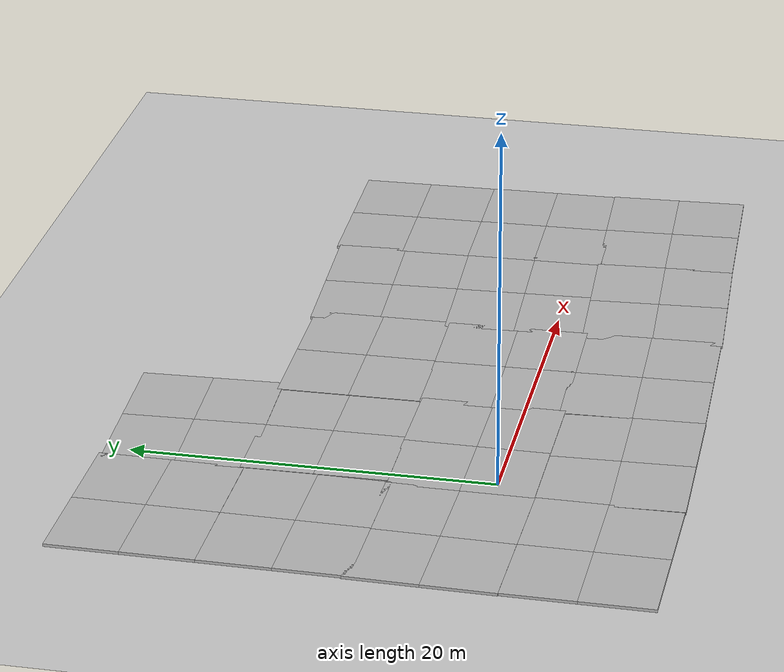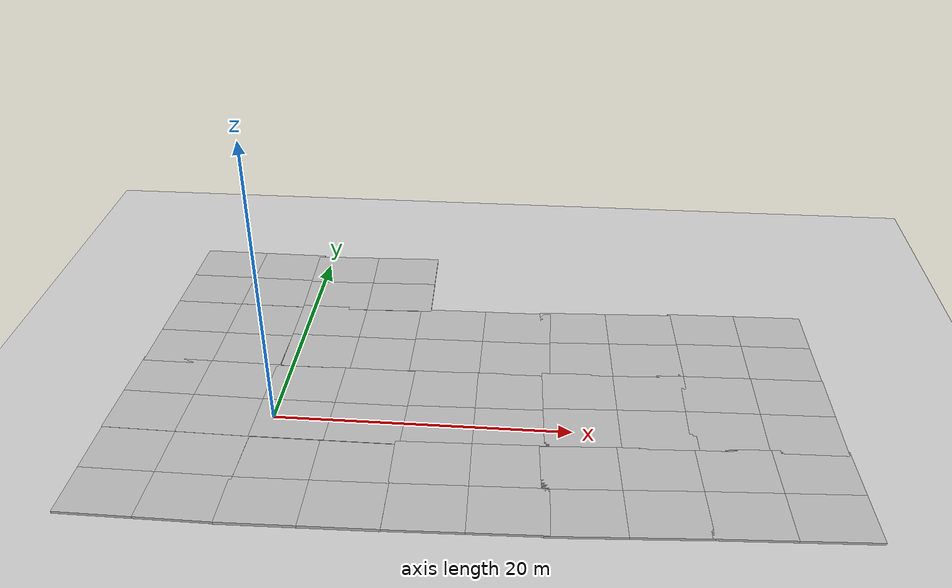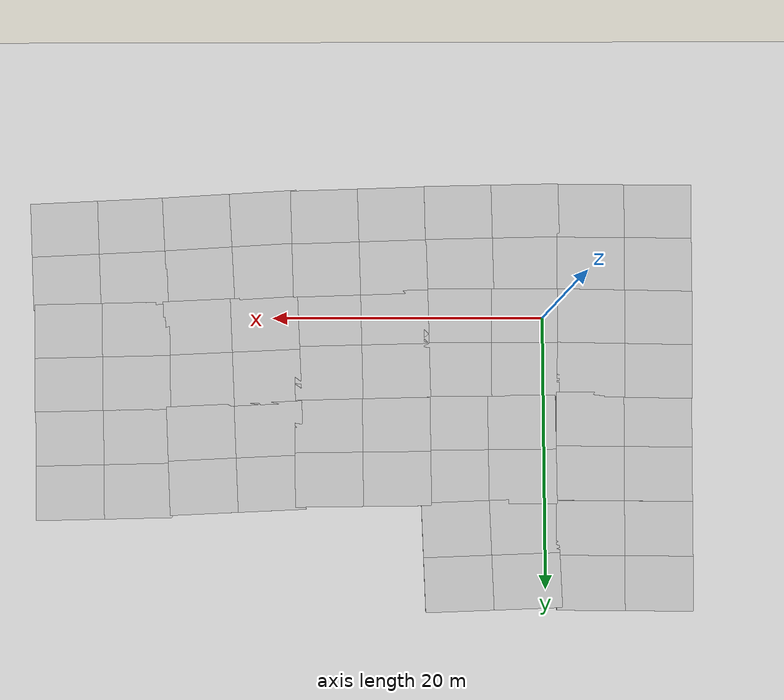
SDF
<sdf version="1.7">
 <world name="default">
  <model name="ground_plane">
   <static>1</static>
   <link name="link">
    <collision name="collision">
     <geometry><plane><normal>0 0 1</normal><size>100 100</size></plane></geometry>
     <surface><friction><ode><mu>100</mu><mu2>50</mu2></ode></friction></surface>
    </collision>
    <visual name="visual">
     <cast_shadows>0</cast_shadows>
     <geometry><plane><normal>0 0 1</normal><size>100 100</size></plane></geometry>
     <material>
      <script><uri>file://media/materials/scripts/gazebo.material</uri><name>Gazebo/Grey</name></script>
     </material>
    </visual>
   </link>
  </model>
  <model name="desert2_sample">
   <static>1</static>
   <link name="link">
    <collision name="collision"><geometry><box><size>8 10 0.2</size></box></geometry></collision>
    <visual name="visual_1">
     <pose>-2 2.5 0 0 -0 0</pose>
     <cast_shadows>0</cast_shadows>
     <geometry><box><size>4 5 0.2</size></box></geometry>
     <material>
      <script>
       <uri>model://desert2/materials/scripts</uri>
       <uri>model://desert2/materials/textures</uri>
       <name>vrc/mud</name>
      </script>
     </material>
    </visual>
    <visual name="visual_2">
     <pose>2 2.5 0 0 -0 0</pose>
     <cast_shadows>0</cast_shadows>
     <geometry><box><size>4 5 0.2</size></box></geometry>
     <material>
      <script>
       <uri>model://desert2/materials/scripts</uri>
       <uri>model://desert2/materials/textures</uri>
       <name>vrc/mud</name>
      </script>
     </material>
    </visual>
    <visual name="visual_3">
     <pose>2 -2.5 0 0 -0 0</pose>
     <cast_shadows>0</cast_shadows>
     <geometry><box><size>4 5 0.2</size></box></geometry>
     <material>
      <script>
       <uri>model://desert2/materials/scripts</uri>
       <uri>model://desert2/materials/textures</uri>
       <name>vrc/mud</name>
      </script>
     </material>
    </visual>
    <visual name="visual_4">
     <pose>-2 -2.5 0 0 -0 0</pose>
     <cast_shadows>0</cast_shadows>
     <geometry><box><size>4 5 0.2</size></box></geometry>
     <material>
      <script>
       <uri>model://desert2/materials/scripts</uri>
       <uri>model://desert2/materials/textures</uri>
       <name>vrc/mud</name>
      </script>
     </material>
    </visual>
   </link>
   <pose>-6.15183 -6.02956 0 1.7e-05 -0.001706 -1.58072</pose>
  </model>
  <model name="desert2_sample_0">
   <static>1</static>
   <link name="link">
    <collision name="collision"><geometry><box><size>8 10 0.2</size></box></geometry></collision>
    <visual name="visual_1">
     <pose>-2 2.5 0 0 -0 0</pose>
     <cast_shadows>0</cast_shadows>
     <geometry><box><size>4 5 0.2</size></box></geometry>
     <material>
      <script>
       <uri>model://desert2/materials/scripts</uri>
       <uri>model://desert2/materials/textures</uri>
       <name>vrc/mud</name>
      </script>
     </material>
    </visual>
    <visual name="visual_2">
     <pose>2 2.5 0 0 -0 0</pose>
     <cast_shadows>0</cast_shadows>
     <geometry><box><size>4 5 0.2</size></box></geometry>
     <material>
      <script>
       <uri>model://desert2/materials/scripts</uri>
       <uri>model://desert2/materials/textures</uri>
       <name>vrc/mud</name>
      </script>
     </material>
    </visual>
    <visual name="visual_3">
     <pose>2 -2.5 0 0 -0 0</pose>
     <cast_shadows>0</cast_shadows>
     <geometry><box><size>4 5 0.2</size></box></geometry>
     <material>
      <script>
       <uri>model://desert2/materials/scripts</uri>
       <uri>model://desert2/materials/textures</uri>
       <name>vrc/mud</name>
      </script>
     </material>
    </visual>
    <visual name="visual_4">
     <pose>-2 -2.5 0 0 -0 0</pose>
     <cast_shadows>0</cast_shadows>
     <geometry><box><size>4 5 0.2</size></box></geometry>
     <material>
      <script>
       <uri>model://desert2/materials/scripts</uri>
       <uri>model://desert2/materials/textures</uri>
       <name>vrc/mud</name>
      </script>
     </material>
    </visual>
   </link>
   <pose>3.66587 -6.016 0 0.000287 -0.007988 -1.55225</pose>
  </model>
  <model name="desert2_sample_1">
   <static>1</static>
   <link name="link">
    <collision name="collision"><geometry><box><size>8 10 0.2</size></box></geometry></collision>
    <visual name="visual_1">
     <pose>-2 2.5 0 0 -0 0</pose>
     <cast_shadows>0</cast_shadows>
     <geometry><box><size>4 5 0.2</size></box></geometry>
     <material>
      <script>
       <uri>model://desert2/materials/scripts</uri>
       <uri>model://desert2/materials/textures</uri>
       <name>vrc/mud</name>
      </script>
     </material>
    </visual>
    <visual name="visual_2">
     <pose>2 2.5 0 0 -0 0</pose>
     <cast_shadows>0</cast_shadows>
     <geometry><box><size>4 5 0.2</size></box></geometry>
     <material>
      <script>
       <uri>model://desert2/materials/scripts</uri>
       <uri>model://desert2/materials/textures</uri>
       <name>vrc/mud</name>
      </script>
     </material>
    </visual>
    <visual name="visual_3">
     <pose>2 -2.5 0 0 -0 0</pose>
     <cast_shadows>0</cast_shadows>
     <geometry><box><size>4 5 0.2</size></box></geometry>
     <material>
      <script>
       <uri>model://desert2/materials/scripts</uri>
       <uri>model://desert2/materials/textures</uri>
       <name>vrc/mud</name>
      </script>
     </material>
    </visual>
    <visual name="visual_4">
     <pose>-2 -2.5 0 0 -0 0</pose>
     <cast_shadows>0</cast_shadows>
     <geometry><box><size>4 5 0.2</size></box></geometry>
     <material>
      <script>
       <uri>model://desert2/materials/scripts</uri>
       <uri>model://desert2/materials/textures</uri>
       <name>vrc/mud</name>
      </script>
     </material>
    </visual>
   </link>
   <pose>13.605 -5.74845 0 0 0 -1.54049</pose>
  </model>
  <model name="desert2_sample_2">
   <static>1</static>
   <link name="link">
    <collision name="collision"><geometry><box><size>8 10 0.2</size></box></geometry></collision>
    <visual name="visual_1">
     <pose>-2 2.5 0 0 -0 0</pose>
     <cast_shadows>0</cast_shadows>
     <geometry><box><size>4 5 0.2</size></box></geometry>
     <material>
      <script>
       <uri>model://desert2/materials/scripts</uri>
       <uri>model://desert2/materials/textures</uri>
       <name>vrc/mud</name>
      </script>
     </material>
    </visual>
    <visual name="visual_2">
     <pose>2 2.5 0 0 -0 0</pose>
     <cast_shadows>0</cast_shadows>
     <geometry><box><size>4 5 0.2</size></box></geometry>
     <material>
      <script>
       <uri>model://desert2/materials/scripts</uri>
       <uri>model://desert2/materials/textures</uri>
       <name>vrc/mud</name>
      </script>
     </material>
    </visual>
    <visual name="visual_3">
     <pose>2 -2.5 0 0 -0 0</pose>
     <cast_shadows>0</cast_shadows>
     <geometry><box><size>4 5 0.2</size></box></geometry>
     <material>
      <script>
       <uri>model://desert2/materials/scripts</uri>
       <uri>model://desert2/materials/textures</uri>
       <name>vrc/mud</name>
      </script>
     </material>
    </visual>
    <visual name="visual_4">
     <pose>-2 -2.5 0 0 -0 0</pose>
     <cast_shadows>0</cast_shadows>
     <geometry><box><size>4 5 0.2</size></box></geometry>
     <material>
      <script>
       <uri>model://desert2/materials/scripts</uri>
       <uri>model://desert2/materials/textures</uri>
       <name>vrc/mud</name>
      </script>
     </material>
    </visual>
   </link>
   <pose>-6.07201 1.90763 0 0 0 -1.59141</pose>
  </model>
  <model name="desert2_sample_3">
   <static>1</static>
   <link name="link">
    <collision name="collision"><geometry><box><size>8 10 0.2</size></box></geometry></collision>
    <visual name="visual_1">
     <pose>-2 2.5 0 0 -0 0</pose>
     <cast_shadows>0</cast_shadows>
     <geometry><box><size>4 5 0.2</size></box></geometry>
     <material>
      <script>
       <uri>model://desert2/materials/scripts</uri>
       <uri>model://desert2/materials/textures</uri>
       <name>vrc/mud</name>
      </script>
     </material>
    </visual>
    <visual name="visual_2">
     <pose>2 2.5 0 0 -0 0</pose>
     <cast_shadows>0</cast_shadows>
     <geometry><box><size>4 5 0.2</size></box></geometry>
     <material>
      <script>
       <uri>model://desert2/materials/scripts</uri>
       <uri>model://desert2/materials/textures</uri>
       <name>vrc/mud</name>
      </script>
     </material>
    </visual>
    <visual name="visual_3">
     <pose>2 -2.5 0 0 -0 0</pose>
     <cast_shadows>0</cast_shadows>
     <geometry><box><size>4 5 0.2</size></box></geometry>
     <material>
      <script>
       <uri>model://desert2/materials/scripts</uri>
       <uri>model://desert2/materials/textures</uri>
       <name>vrc/mud</name>
      </script>
     </material>
    </visual>
    <visual name="visual_4">
     <pose>-2 -2.5 0 0 -0 0</pose>
     <cast_shadows>0</cast_shadows>
     <geometry><box><size>4 5 0.2</size></box></geometry>
     <material>
      <script>
       <uri>model://desert2/materials/scripts</uri>
       <uri>model://desert2/materials/textures</uri>
       <name>vrc/mud</name>
      </script>
     </material>
    </visual>
   </link>
   <pose>3.80954 1.81427 0 0 0 -1.5745</pose>
  </model>
  <model name="desert2_sample_4">
   <static>1</static>
   <link name="link">
    <collision name="collision"><geometry><box><size>8 10 0.2</size></box></geometry></collision>
    <visual name="visual_1">
     <pose>-2 2.5 0 0 -0 0</pose>
     <cast_shadows>0</cast_shadows>
     <geometry><box><size>4 5 0.2</size></box></geometry>
     <material>
      <script>
       <uri>model://desert2/materials/scripts</uri>
       <uri>model://desert2/materials/textures</uri>
       <name>vrc/mud</name>
      </script>
     </material>
    </visual>
    <visual name="visual_2">
     <pose>2 2.5 0 0 -0 0</pose>
     <cast_shadows>0</cast_shadows>
     <geometry><box><size>4 5 0.2</size></box></geometry>
     <material>
      <script>
       <uri>model://desert2/materials/scripts</uri>
       <uri>model://desert2/materials/textures</uri>
       <name>vrc/mud</name>
      </script>
     </material>
    </visual>
    <visual name="visual_3">
     <pose>2 -2.5 0 0 -0 0</pose>
     <cast_shadows>0</cast_shadows>
     <geometry><box><size>4 5 0.2</size></box></geometry>
     <material>
      <script>
       <uri>model://desert2/materials/scripts</uri>
       <uri>model://desert2/materials/textures</uri>
       <name>vrc/mud</name>
      </script>
     </material>
    </visual>
    <visual name="visual_4">
     <pose>-2 -2.5 0 0 -0 0</pose>
     <cast_shadows>0</cast_shadows>
     <geometry><box><size>4 5 0.2</size></box></geometry>
     <material>
      <script>
       <uri>model://desert2/materials/scripts</uri>
       <uri>model://desert2/materials/textures</uri>
       <name>vrc/mud</name>
      </script>
     </material>
    </visual>
   </link>
   <pose>13.4132 1.97928 -0 0 0 -1.54908</pose>
  </model>
  <model name="desert2_sample_5">
   <static>1</static>
   <link name="link">
    <collision name="collision"><geometry><box><size>8 10 0.2</size></box></geometry></collision>
    <visual name="visual_1">
     <pose>-2 2.5 0 0 -0 0</pose>
     <cast_shadows>0</cast_shadows>
     <geometry><box><size>4 5 0.2</size></box></geometry>
     <material>
      <script>
       <uri>model://desert2/materials/scripts</uri>
       <uri>model://desert2/materials/textures</uri>
       <name>vrc/mud</name>
      </script>
     </material>
    </visual>
    <visual name="visual_2">
     <pose>2 2.5 0 0 -0 0</pose>
     <cast_shadows>0</cast_shadows>
     <geometry><box><size>4 5 0.2</size></box></geometry>
     <material>
      <script>
       <uri>model://desert2/materials/scripts</uri>
       <uri>model://desert2/materials/textures</uri>
       <name>vrc/mud</name>
      </script>
     </material>
    </visual>
    <visual name="visual_3">
     <pose>2 -2.5 0 0 -0 0</pose>
     <cast_shadows>0</cast_shadows>
     <geometry><box><size>4 5 0.2</size></box></geometry>
     <material>
      <script>
       <uri>model://desert2/materials/scripts</uri>
       <uri>model://desert2/materials/textures</uri>
       <name>vrc/mud</name>
      </script>
     </material>
    </visual>
    <visual name="visual_4">
     <pose>-2 -2.5 0 0 -0 0</pose>
     <cast_shadows>0</cast_shadows>
     <geometry><box><size>4 5 0.2</size></box></geometry>
     <material>
      <script>
       <uri>model://desert2/materials/scripts</uri>
       <uri>model://desert2/materials/textures</uri>
       <name>vrc/mud</name>
      </script>
     </material>
    </visual>
   </link>
   <pose>-5.89392 9.54352 0 0 0 -1.58202</pose>
  </model>
  <model name="desert2_sample_6">
   <static>1</static>
   <link name="link">
    <collision name="collision"><geometry><box><size>8 10 0.2</size></box></geometry></collision>
    <visual name="visual_1">
     <pose>-2 2.5 0 0 -0 0</pose>
     <cast_shadows>0</cast_shadows>
     <geometry><box><size>4 5 0.2</size></box></geometry>
     <material>
      <script>
       <uri>model://desert2/materials/scripts</uri>
       <uri>model://desert2/materials/textures</uri>
       <name>vrc/mud</name>
      </script>
     </material>
    </visual>
    <visual name="visual_2">
     <pose>2 2.5 0 0 -0 0</pose>
     <cast_shadows>0</cast_shadows>
     <geometry><box><size>4 5 0.2</size></box></geometry>
     <material>
      <script>
       <uri>model://desert2/materials/scripts</uri>
       <uri>model://desert2/materials/textures</uri>
       <name>vrc/mud</name>
      </script>
     </material>
    </visual>
    <visual name="visual_3">
     <pose>2 -2.5 0 0 -0 0</pose>
     <cast_shadows>0</cast_shadows>
     <geometry><box><size>4 5 0.2</size></box></geometry>
     <material>
      <script>
       <uri>model://desert2/materials/scripts</uri>
       <uri>model://desert2/materials/textures</uri>
       <name>vrc/mud</name>
      </script>
     </material>
    </visual>
    <visual name="visual_4">
     <pose>-2 -2.5 0 0 -0 0</pose>
     <cast_shadows>0</cast_shadows>
     <geometry><box><size>4 5 0.2</size></box></geometry>
     <material>
      <script>
       <uri>model://desert2/materials/scripts</uri>
       <uri>model://desert2/materials/textures</uri>
       <name>vrc/mud</name>
      </script>
     </material>
    </visual>
   </link>
   <pose>-5.80858 17.5469 0 0 0 -1.58064</pose>
  </model>
  <model name="desert2_sample_10">
   <static>1</static>
   <link name="link">
    <collision name="collision"><geometry><box><size>8 10 0.2</size></box></geometry></collision>
    <visual name="visual_1">
     <pose>-2 2.5 0 0 -0 0</pose>
     <cast_shadows>0</cast_shadows>
     <geometry><box><size>4 5 0.2</size></box></geometry>
     <material>
      <script>
       <uri>model://desert2/materials/scripts</uri>
       <uri>model://desert2/materials/textures</uri>
       <name>vrc/mud</name>
      </script>
     </material>
    </visual>
    <visual name="visual_2">
     <pose>2 2.5 0 0 -0 0</pose>
     <cast_shadows>0</cast_shadows>
     <geometry><box><size>4 5 0.2</size></box></geometry>
     <material>
      <script>
       <uri>model://desert2/materials/scripts</uri>
       <uri>model://desert2/materials/textures</uri>
       <name>vrc/mud</name>
      </script>
     </material>
    </visual>
    <visual name="visual_3">
     <pose>2 -2.5 0 0 -0 0</pose>
     <cast_shadows>0</cast_shadows>
     <geometry><box><size>4 5 0.2</size></box></geometry>
     <material>
      <script>
       <uri>model://desert2/materials/scripts</uri>
       <uri>model://desert2/materials/textures</uri>
       <name>vrc/mud</name>
      </script>
     </material>
    </visual>
    <visual name="visual_4">
     <pose>-2 -2.5 0 0 -0 0</pose>
     <cast_shadows>0</cast_shadows>
     <geometry><box><size>4 5 0.2</size></box></geometry>
     <material>
      <script>
       <uri>model://desert2/materials/scripts</uri>
       <uri>model://desert2/materials/textures</uri>
       <name>vrc/mud</name>
      </script>
     </material>
    </visual>
   </link>
   <pose>4.10776 9.76319 -0.007095 -0.005205 -9.9e-05 -1.56425</pose>
  </model>
  <model name="desert2_sample_11">
   <static>1</static>
   <link name="link">
    <collision name="collision"><geometry><box><size>8 10 0.2</size></box></geometry></collision>
    <visual name="visual_1">
     <pose>-2 2.5 0 0 -0 0</pose>
     <cast_shadows>0</cast_shadows>
     <geometry><box><size>4 5 0.2</size></box></geometry>
     <material>
      <script>
       <uri>model://desert2/materials/scripts</uri>
       <uri>model://desert2/materials/textures</uri>
       <name>vrc/mud</name>
      </script>
     </material>
    </visual>
    <visual name="visual_2">
     <pose>2 2.5 0 0 -0 0</pose>
     <cast_shadows>0</cast_shadows>
     <geometry><box><size>4 5 0.2</size></box></geometry>
     <material>
      <script>
       <uri>model://desert2/materials/scripts</uri>
       <uri>model://desert2/materials/textures</uri>
       <name>vrc/mud</name>
      </script>
     </material>
    </visual>
    <visual name="visual_3">
     <pose>2 -2.5 0 0 -0 0</pose>
     <cast_shadows>0</cast_shadows>
     <geometry><box><size>4 5 0.2</size></box></geometry>
     <material>
      <script>
       <uri>model://desert2/materials/scripts</uri>
       <uri>model://desert2/materials/textures</uri>
       <name>vrc/mud</name>
      </script>
     </material>
    </visual>
    <visual name="visual_4">
     <pose>-2 -2.5 0 0 -0 0</pose>
     <cast_shadows>0</cast_shadows>
     <geometry><box><size>4 5 0.2</size></box></geometry>
     <material>
      <script>
       <uri>model://desert2/materials/scripts</uri>
       <uri>model://desert2/materials/textures</uri>
       <name>vrc/mud</name>
      </script>
     </material>
    </visual>
   </link>
   <pose>3.93401 17.489 0 0 0 -1.53478</pose>
  </model>
  <model name="desert2_sample_15">
   <static>1</static>
   <link name="link">
    <collision name="collision"><geometry><box><size>8 10 0.2</size></box></geometry></collision>
    <visual name="visual_1">
     <pose>-2 2.5 0 0 -0 0</pose>
     <cast_shadows>0</cast_shadows>
     <geometry><box><size>4 5 0.2</size></box></geometry>
     <material>
      <script>
       <uri>model://desert2/materials/scripts</uri>
       <uri>model://desert2/materials/textures</uri>
       <name>vrc/mud</name>
      </script>
     </material>
    </visual>
    <visual name="visual_2">
     <pose>2 2.5 0 0 -0 0</pose>
     <cast_shadows>0</cast_shadows>
     <geometry><box><size>4 5 0.2</size></box></geometry>
     <material>
      <script>
       <uri>model://desert2/materials/scripts</uri>
       <uri>model://desert2/materials/textures</uri>
       <name>vrc/mud</name>
      </script>
     </material>
    </visual>
    <visual name="visual_3">
     <pose>2 -2.5 0 0 -0 0</pose>
     <cast_shadows>0</cast_shadows>
     <geometry><box><size>4 5 0.2</size></box></geometry>
     <material>
      <script>
       <uri>model://desert2/materials/scripts</uri>
       <uri>model://desert2/materials/textures</uri>
       <name>vrc/mud</name>
      </script>
     </material>
    </visual>
    <visual name="visual_4">
     <pose>-2 -2.5 0 0 -0 0</pose>
     <cast_shadows>0</cast_shadows>
     <geometry><box><size>4 5 0.2</size></box></geometry>
     <material>
      <script>
       <uri>model://desert2/materials/scripts</uri>
       <uri>model://desert2/materials/textures</uri>
       <name>vrc/mud</name>
      </script>
     </material>
    </visual>
   </link>
   <pose>13.3483 9.91985 0 0 0 -1.56194</pose>
  </model>
  <model name="desert2_sample_20">
   <static>1</static>
   <link name="link">
    <collision name="collision"><geometry><box><size>8 10 0.2</size></box></geometry></collision>
    <visual name="visual_1">
     <pose>-2 2.5 0 0 -0 0</pose>
     <cast_shadows>0</cast_shadows>
     <geometry><box><size>4 5 0.2</size></box></geometry>
     <material>
      <script>
       <uri>model://desert2/materials/scripts</uri>
       <uri>model://desert2/materials/textures</uri>
       <name>vrc/mud</name>
      </script>
     </material>
    </visual>
    <visual name="visual_2">
     <pose>2 2.5 0 0 -0 0</pose>
     <cast_shadows>0</cast_shadows>
     <geometry><box><size>4 5 0.2</size></box></geometry>
     <material>
      <script>
       <uri>model://desert2/materials/scripts</uri>
       <uri>model://desert2/materials/textures</uri>
       <name>vrc/mud</name>
      </script>
     </material>
    </visual>
    <visual name="visual_3">
     <pose>2 -2.5 0 0 -0 0</pose>
     <cast_shadows>0</cast_shadows>
     <geometry><box><size>4 5 0.2</size></box></geometry>
     <material>
      <script>
       <uri>model://desert2/materials/scripts</uri>
       <uri>model://desert2/materials/textures</uri>
       <name>vrc/mud</name>
      </script>
     </material>
    </visual>
    <visual name="visual_4">
     <pose>-2 -2.5 0 0 -0 0</pose>
     <cast_shadows>0</cast_shadows>
     <geometry><box><size>4 5 0.2</size></box></geometry>
     <material>
      <script>
       <uri>model://desert2/materials/scripts</uri>
       <uri>model://desert2/materials/textures</uri>
       <name>vrc/mud</name>
      </script>
     </material>
    </visual>
   </link>
   <pose>23.0679 -5.38675 0 0 0 -1.51321</pose>
  </model>
  <model name="desert2_sample_21">
   <static>1</static>
   <link name="link">
    <collision name="collision"><geometry><box><size>8 10 0.2</size></box></geometry></collision>
    <visual name="visual_1">
     <pose>-2 2.5 0 0 -0 0</pose>
     <cast_shadows>0</cast_shadows>
     <geometry><box><size>4 5 0.2</size></box></geometry>
     <material>
      <script>
       <uri>model://desert2/materials/scripts</uri>
       <uri>model://desert2/materials/textures</uri>
       <name>vrc/mud</name>
      </script>
     </material>
    </visual>
    <visual name="visual_2">
     <pose>2 2.5 0 0 -0 0</pose>
     <cast_shadows>0</cast_shadows>
     <geometry><box><size>4 5 0.2</size></box></geometry>
     <material>
      <script>
       <uri>model://desert2/materials/scripts</uri>
       <uri>model://desert2/materials/textures</uri>
       <name>vrc/mud</name>
      </script>
     </material>
    </visual>
    <visual name="visual_3">
     <pose>2 -2.5 0 0 -0 0</pose>
     <cast_shadows>0</cast_shadows>
     <geometry><box><size>4 5 0.2</size></box></geometry>
     <material>
      <script>
       <uri>model://desert2/materials/scripts</uri>
       <uri>model://desert2/materials/textures</uri>
       <name>vrc/mud</name>
      </script>
     </material>
    </visual>
    <visual name="visual_4">
     <pose>-2 -2.5 0 0 -0 0</pose>
     <cast_shadows>0</cast_shadows>
     <geometry><box><size>4 5 0.2</size></box></geometry>
     <material>
      <script>
       <uri>model://desert2/materials/scripts</uri>
       <uri>model://desert2/materials/textures</uri>
       <name>vrc/mud</name>
      </script>
     </material>
    </visual>
   </link>
   <pose>32.9384 -4.87091 0 0 0 -1.52495</pose>
  </model>
  <model name="desert2_sample_28">
   <static>1</static>
   <link name="link">
    <collision name="collision"><geometry><box><size>8 10 0.2</size></box></geometry></collision>
    <visual name="visual_1">
     <pose>-2 2.5 0 0 -0 0</pose>
     <cast_shadows>0</cast_shadows>
     <geometry><box><size>4 5 0.2</size></box></geometry>
     <material>
      <script>
       <uri>model://desert2/materials/scripts</uri>
       <uri>model://desert2/materials/textures</uri>
       <name>vrc/mud</name>
      </script>
     </material>
    </visual>
    <visual name="visual_2">
     <pose>2 2.5 0 0 -0 0</pose>
     <cast_shadows>0</cast_shadows>
     <geometry><box><size>4 5 0.2</size></box></geometry>
     <material>
      <script>
       <uri>model://desert2/materials/scripts</uri>
       <uri>model://desert2/materials/textures</uri>
       <name>vrc/mud</name>
      </script>
     </material>
    </visual>
    <visual name="visual_3">
     <pose>2 -2.5 0 0 -0 0</pose>
     <cast_shadows>0</cast_shadows>
     <geometry><box><size>4 5 0.2</size></box></geometry>
     <material>
      <script>
       <uri>model://desert2/materials/scripts</uri>
       <uri>model://desert2/materials/textures</uri>
       <name>vrc/mud</name>
      </script>
     </material>
    </visual>
    <visual name="visual_4">
     <pose>-2 -2.5 0 0 -0 0</pose>
     <cast_shadows>0</cast_shadows>
     <geometry><box><size>4 5 0.2</size></box></geometry>
     <material>
      <script>
       <uri>model://desert2/materials/scripts</uri>
       <uri>model://desert2/materials/textures</uri>
       <name>vrc/mud</name>
      </script>
     </material>
    </visual>
   </link>
   <pose>22.9987 2.5014 0 0 0 -1.52749</pose>
  </model>
  <model name="desert2_sample_29">
   <static>1</static>
   <link name="link">
    <collision name="collision"><geometry><box><size>8 10 0.2</size></box></geometry></collision>
    <visual name="visual_1">
     <pose>-2 2.5 0 0 -0 0</pose>
     <cast_shadows>0</cast_shadows>
     <geometry><box><size>4 5 0.2</size></box></geometry>
     <material>
      <script>
       <uri>model://desert2/materials/scripts</uri>
       <uri>model://desert2/materials/textures</uri>
       <name>vrc/mud</name>
      </script>
     </material>
    </visual>
    <visual name="visual_2">
     <pose>2 2.5 0 0 -0 0</pose>
     <cast_shadows>0</cast_shadows>
     <geometry><box><size>4 5 0.2</size></box></geometry>
     <material>
      <script>
       <uri>model://desert2/materials/scripts</uri>
       <uri>model://desert2/materials/textures</uri>
       <name>vrc/mud</name>
      </script>
     </material>
    </visual>
    <visual name="visual_3">
     <pose>2 -2.5 0 0 -0 0</pose>
     <cast_shadows>0</cast_shadows>
     <geometry><box><size>4 5 0.2</size></box></geometry>
     <material>
      <script>
       <uri>model://desert2/materials/scripts</uri>
       <uri>model://desert2/materials/textures</uri>
       <name>vrc/mud</name>
      </script>
     </material>
    </visual>
    <visual name="visual_4">
     <pose>-2 -2.5 0 0 -0 0</pose>
     <cast_shadows>0</cast_shadows>
     <geometry><box><size>4 5 0.2</size></box></geometry>
     <material>
      <script>
       <uri>model://desert2/materials/scripts</uri>
       <uri>model://desert2/materials/textures</uri>
       <name>vrc/mud</name>
      </script>
     </material>
    </visual>
   </link>
   <pose>32.6043 2.83027 0 0 0 -1.55131</pose>
  </model>
  <model name="desert2_sample_30">
   <static>1</static>
   <link name="link">
    <collision name="collision"><geometry><box><size>8 10 0.2</size></box></geometry></collision>
    <visual name="visual_1">
     <pose>-2 2.5 0 0 -0 0</pose>
     <cast_shadows>0</cast_shadows>
     <geometry><box><size>4 5 0.2</size></box></geometry>
     <material>
      <script>
       <uri>model://desert2/materials/scripts</uri>
       <uri>model://desert2/materials/textures</uri>
       <name>vrc/mud</name>
      </script>
     </material>
    </visual>
    <visual name="visual_2">
     <pose>2 2.5 0 0 -0 0</pose>
     <cast_shadows>0</cast_shadows>
     <geometry><box><size>4 5 0.2</size></box></geometry>
     <material>
      <script>
       <uri>model://desert2/materials/scripts</uri>
       <uri>model://desert2/materials/textures</uri>
       <name>vrc/mud</name>
      </script>
     </material>
    </visual>
    <visual name="visual_3">
     <pose>2 -2.5 0 0 -0 0</pose>
     <cast_shadows>0</cast_shadows>
     <geometry><box><size>4 5 0.2</size></box></geometry>
     <material>
      <script>
       <uri>model://desert2/materials/scripts</uri>
       <uri>model://desert2/materials/textures</uri>
       <name>vrc/mud</name>
      </script>
     </material>
    </visual>
    <visual name="visual_4">
     <pose>-2 -2.5 0 0 -0 0</pose>
     <cast_shadows>0</cast_shadows>
     <geometry><box><size>4 5 0.2</size></box></geometry>
     <material>
      <script>
       <uri>model://desert2/materials/scripts</uri>
       <uri>model://desert2/materials/textures</uri>
       <name>vrc/mud</name>
      </script>
     </material>
    </visual>
   </link>
   <pose>22.681 10.3345 0 0 0 -1.52685</pose>
  </model>
  <model name="desert2_sample_31">
   <static>1</static>
   <link name="link">
    <collision name="collision"><geometry><box><size>8 10 0.2</size></box></geometry></collision>
    <visual name="visual_1">
     <pose>-2 2.5 0 0 -0 0</pose>
     <cast_shadows>0</cast_shadows>
     <geometry><box><size>4 5 0.2</size></box></geometry>
     <material>
      <script>
       <uri>model://desert2/materials/scripts</uri>
       <uri>model://desert2/materials/textures</uri>
       <name>vrc/mud</name>
      </script>
     </material>
    </visual>
    <visual name="visual_2">
     <pose>2 2.5 0 0 -0 0</pose>
     <cast_shadows>0</cast_shadows>
     <geometry><box><size>4 5 0.2</size></box></geometry>
     <material>
      <script>
       <uri>model://desert2/materials/scripts</uri>
       <uri>model://desert2/materials/textures</uri>
       <name>vrc/mud</name>
      </script>
     </material>
    </visual>
    <visual name="visual_3">
     <pose>2 -2.5 0 0 -0 0</pose>
     <cast_shadows>0</cast_shadows>
     <geometry><box><size>4 5 0.2</size></box></geometry>
     <material>
      <script>
       <uri>model://desert2/materials/scripts</uri>
       <uri>model://desert2/materials/textures</uri>
       <name>vrc/mud</name>
      </script>
     </material>
    </visual>
    <visual name="visual_4">
     <pose>-2 -2.5 0 0 -0 0</pose>
     <cast_shadows>0</cast_shadows>
     <geometry><box><size>4 5 0.2</size></box></geometry>
     <material>
      <script>
       <uri>model://desert2/materials/scripts</uri>
       <uri>model://desert2/materials/textures</uri>
       <name>vrc/mud</name>
      </script>
     </material>
    </visual>
   </link>
   <pose>32.4029 10.8055 0 0 0 -1.55049</pose>
  </model>
 </world>
</sdf>
